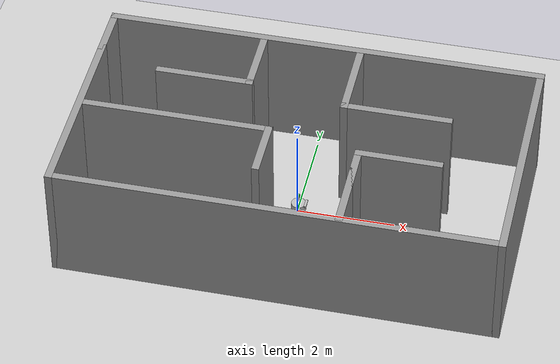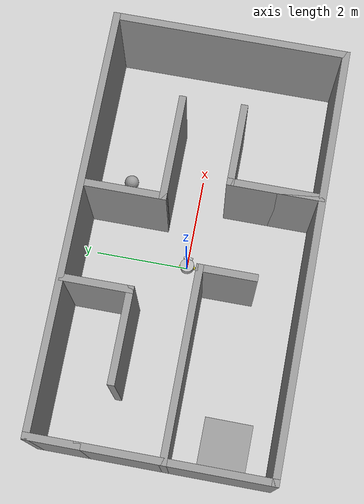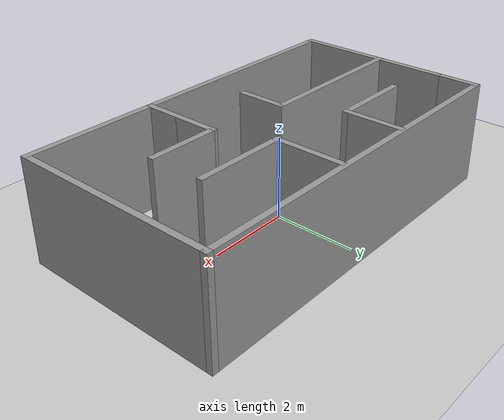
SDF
<sdf version="1.7">
 <world name="default">
  <light name="sun" type="directional">
   <diffuse>0.8 0.8 0.8 1</diffuse>
   <specular>0.2 0.2 0.2 1</specular>
   <attenuation>
    <range>1000</range>
    <constant>0.9</constant>
    <linear>0.01</linear>
    <quadratic>0.001</quadratic>
   </attenuation>
   <direction>-0.5 0.1 -0.9</direction>
   <spot><inner_angle>0</inner_angle><outer_angle>0</outer_angle><falloff>0</falloff></spot>
  </light>
  <model name="ground_plane">
   <static>1</static>
   <link name="link">
    <collision name="collision">
     <geometry><plane><normal>0 0 1</normal><size>100 100</size></plane></geometry>
     <surface>
      <contact><collide_bitmask>65535</collide_bitmask></contact>
      <friction><ode><mu>100</mu><mu2>50</mu2></ode></friction>
     </surface>
    </collision>
    <visual name="visual">
     <cast_shadows>0</cast_shadows>
     <geometry><plane><normal>0 0 1</normal><size>100 100</size></plane></geometry>
     <material>
      <script><uri>file://media/materials/scripts/gazebo.material</uri><name>Gazebo/Grey</name></script>
     </material>
    </visual>
   </link>
  </model>
  <gravity>0 0 -9.8</gravity>
  <magnetic_field>6e-06 2.3e-05 -4.2e-05</magnetic_field>
  <atmosphere type="adiabatic"/>
  <physics type="ode">
   <max_step_size>0.001</max_step_size>
   <real_time_factor>1</real_time_factor>
   <real_time_update_rate>1000</real_time_update_rate>
  </physics>
  <scene><ambient>0.4 0.4 0.4 1</ambient><background>0.7 0.7 0.7 1</background><shadows>1</shadows></scene>
  <audio><device>default</device></audio>
  <spherical_coordinates>
   <surface_model>EARTH_WGS84</surface_model>
   <latitude_deg>0</latitude_deg>
   <longitude_deg>0</longitude_deg>
   <elevation>0</elevation>
   <heading_deg>0</heading_deg>
  </spherical_coordinates>
  <model name="Untitled">
   <pose>0.075336 1.07544 0 0 -0 0</pose>
   <link name="Wall_0">
    <collision name="Wall_0_Collision">
     <geometry><box><size>4 0.15 2.5</size></box></geometry>
     <pose>0 0 1.25 0 -0 0</pose>
    </collision>
    <visual name="Wall_0_Visual">
     <pose>0 0 1.25 0 -0 0</pose>
     <geometry><box><size>4 0.15 2.5</size></box></geometry>
     <material>
      <script><uri>file://media/materials/scripts/gazebo.material</uri><name>Gazebo/Grey</name></script>
      <ambient>1 1 1 1</ambient>
     </material>
     <meta><layer>0</layer></meta>
    </visual>
    <pose>-4.425 -1.6825 0 0 -0 -1.5708</pose>
   </link>
   <link name="Wall_1">
    <collision name="Wall_1_Collision">
     <geometry><box><size>9 0.15 2.5</size></box></geometry>
     <pose>0 0 1.25 0 -0 0</pose>
    </collision>
    <visual name="Wall_1_Visual">
     <pose>0 0 1.25 0 -0 0</pose>
     <geometry><box><size>9 0.15 2.5</size></box></geometry>
     <material>
      <script><uri>file://media/materials/scripts/gazebo.material</uri><name>Gazebo/Grey</name></script>
      <ambient>1 1 1 1</ambient>
     </material>
     <meta><layer>0</layer></meta>
    </visual>
    <pose>-0 -3.6075 0 0 -0 0</pose>
   </link>
   <link name="Wall_10">
    <collision name="Wall_10_Collision">
     <geometry><box><size>1.25 0.15 2.5</size></box></geometry>
     <pose>0 0 1.25 0 -0 0</pose>
    </collision>
    <visual name="Wall_10_Visual">
     <pose>0 0 1.25 0 -0 0</pose>
     <geometry><box><size>1.25 0.15 2.5</size></box></geometry>
     <material>
      <script><uri>file://media/materials/scripts/gazebo.material</uri><name>Gazebo/Grey</name></script>
      <ambient>1 1 1 1</ambient>
     </material>
     <meta><layer>0</layer></meta>
    </visual>
    <pose>-0.575 -1.9875 0 0 -0 -1.5708</pose>
   </link>
   <link name="Wall_12">
    <collision name="Wall_12_Collision">
     <geometry><box><size>1.75 0.15 2.5</size></box></geometry>
     <pose>0 0 1.25 0 -0 0</pose>
    </collision>
    <visual name="Wall_12_Visual">
     <pose>0 0 1.25 0 -0 0</pose>
     <geometry><box><size>1.75 0.15 2.5</size></box></geometry>
     <material>
      <script><uri>file://media/materials/scripts/gazebo.material</uri><name>Gazebo/Grey</name></script>
      <ambient>1 1 1 1</ambient>
     </material>
     <meta><layer>0</layer></meta>
    </visual>
    <pose>0.745 0.3525 0 0 -0 -1.5708</pose>
   </link>
   <link name="Wall_13">
    <collision name="Wall_13_Collision">
     <geometry><box><size>2.25 0.15 2.5</size></box></geometry>
     <pose>0 0 1.25 0 -0 0</pose>
    </collision>
    <visual name="Wall_13_Visual">
     <pose>0 0 1.25 0 -0 0</pose>
     <geometry><box><size>2.25 0.15 2.5</size></box></geometry>
     <material>
      <script><uri>file://media/materials/scripts/gazebo.material</uri><name>Gazebo/Grey</name></script>
      <ambient>1 1 1 1</ambient>
     </material>
     <meta><layer>0</layer></meta>
    </visual>
    <pose>1.795 -0.4475 0 0 -0 0</pose>
   </link>
   <link name="Wall_15">
    <collision name="Wall_15_Collision">
     <geometry><box><size>2 0.15 2.5</size></box></geometry>
     <pose>0 0 1.25 0 -0 0</pose>
    </collision>
    <visual name="Wall_15_Visual">
     <pose>0 0 1.25 0 -0 0</pose>
     <geometry><box><size>2 0.15 2.5</size></box></geometry>
     <material>
      <script><uri>file://media/materials/scripts/gazebo.material</uri><name>Gazebo/Grey</name></script>
      <ambient>1 1 1 1</ambient>
     </material>
     <meta><layer>0</layer></meta>
    </visual>
    <pose>1.285 -2.6525 0 0 -0 -1.5708</pose>
   </link>
   <link name="Wall_16">
    <collision name="Wall_16_Collision">
     <geometry><box><size>2 0.15 2.5</size></box></geometry>
     <pose>0 0 1.25 0 -0 0</pose>
    </collision>
    <visual name="Wall_16_Visual">
     <pose>0 0 1.25 0 -0 0</pose>
     <geometry><box><size>2 0.15 2.5</size></box></geometry>
     <material>
      <script><uri>file://media/materials/scripts/gazebo.material</uri><name>Gazebo/Grey</name></script>
      <ambient>1 1 1 1</ambient>
     </material>
     <meta><layer>0</layer></meta>
    </visual>
    <pose>1.285 -2.6525 0 0 -0 1.5708</pose>
   </link>
   <link name="Wall_17">
    <collision name="Wall_17_Collision">
     <geometry><box><size>1.75 0.15 2.5</size></box></geometry>
     <pose>0 0 1.25 0 -0 0</pose>
    </collision>
    <visual name="Wall_17_Visual">
     <pose>0 0 1.25 0 -0 0</pose>
     <geometry><box><size>1.75 0.15 2.5</size></box></geometry>
     <material>
      <script><uri>file://media/materials/scripts/gazebo.material</uri><name>Gazebo/Grey</name></script>
      <ambient>1 1 1 1</ambient>
     </material>
     <meta><layer>0</layer></meta>
    </visual>
    <pose>2.085 -1.7275 0 0 -0 0</pose>
   </link>
   <link name="Wall_2">
    <collision name="Wall_2_Collision">
     <geometry><box><size>5 0.15 2.5</size></box></geometry>
     <pose>0 0 1.25 0 -0 0</pose>
    </collision>
    <visual name="Wall_2_Visual">
     <pose>0 0 1.25 0 -0 0</pose>
     <geometry><box><size>5 0.15 2.5</size></box></geometry>
     <material>
      <script><uri>file://media/materials/scripts/gazebo.material</uri><name>Gazebo/Grey</name></script>
      <ambient>1 1 1 1</ambient>
     </material>
     <meta><layer>0</layer></meta>
    </visual>
    <pose>4.425 -1.1825 0 0 -0 1.5708</pose>
   </link>
   <link name="Wall_3">
    <collision name="Wall_3_Collision">
     <geometry><box><size>9 0.15 2.5</size></box></geometry>
     <pose>0 0 1.25 0 -0 0</pose>
    </collision>
    <visual name="Wall_3_Visual">
     <pose>0 0 1.25 0 -0 0</pose>
     <geometry><box><size>9 0.15 2.5</size></box></geometry>
     <material>
      <script><uri>file://media/materials/scripts/gazebo.material</uri><name>Gazebo/Grey</name></script>
      <ambient>1 1 1 1</ambient>
     </material>
     <meta><layer>0</layer></meta>
    </visual>
    <pose>-0 1.2425 0 0 -0 3.14159</pose>
   </link>
   <link name="Wall_4">
    <collision name="Wall_4_Collision">
     <geometry><box><size>1.15 0.15 2.5</size></box></geometry>
     <pose>0 0 1.25 0 -0 0</pose>
    </collision>
    <visual name="Wall_4_Visual">
     <pose>0 0 1.25 0 -0 0</pose>
     <geometry><box><size>1.15 0.15 2.5</size></box></geometry>
     <material>
      <script><uri>file://media/materials/scripts/gazebo.material</uri><name>Gazebo/Grey</name></script>
      <ambient>1 1 1 1</ambient>
     </material>
     <meta><layer>0</layer></meta>
    </visual>
    <pose>-4.425 0.7425 0 0 -0 -1.5708</pose>
   </link>
   <link name="Wall_6">
    <collision name="Wall_6_Collision">
     <geometry><box><size>1.5 0.15 2.5</size></box></geometry>
     <pose>0 0 1.25 0 -0 0</pose>
    </collision>
    <visual name="Wall_6_Visual">
     <pose>0 0 1.25 0 -0 0</pose>
     <geometry><box><size>1.5 0.15 2.5</size></box></geometry>
     <material>
      <script><uri>file://media/materials/scripts/gazebo.material</uri><name>Gazebo/Grey</name></script>
      <ambient>1 1 1 1</ambient>
     </material>
     <meta><layer>0</layer></meta>
    </visual>
    <pose>-1.255 0.5075 0 0 -0 -1.5708</pose>
   </link>
   <link name="Wall_7">
    <collision name="Wall_7_Collision">
     <geometry><box><size>2 0.15 2.5</size></box></geometry>
     <pose>0 0 1.25 0 -0 0</pose>
    </collision>
    <visual name="Wall_7_Visual">
     <pose>0 0 1.25 0 -0 0</pose>
     <geometry><box><size>2 0.15 2.5</size></box></geometry>
     <material>
      <script><uri>file://media/materials/scripts/gazebo.material</uri><name>Gazebo/Grey</name></script>
      <ambient>1 1 1 1</ambient>
     </material>
     <meta><layer>0</layer></meta>
    </visual>
    <pose>-2.18 -0.1675 0 0 -0 3.14159</pose>
   </link>
   <link name="Wall_9">
    <collision name="Wall_9_Collision">
     <geometry><box><size>4 0.15 2.5</size></box></geometry>
     <pose>0 0 1.25 0 -0 0</pose>
    </collision>
    <visual name="Wall_9_Visual">
     <pose>0 0 1.25 0 -0 0</pose>
     <geometry><box><size>4 0.15 2.5</size></box></geometry>
     <material>
      <script><uri>file://media/materials/scripts/gazebo.material</uri><name>Gazebo/Grey</name></script>
      <ambient>1 1 1 1</ambient>
     </material>
     <meta><layer>0</layer></meta>
    </visual>
    <pose>-2.5 -1.4375 0 0 -0 0</pose>
   </link>
   <static>1</static>
  </model>
  <model name="unit_box_0">
   <pose>-3.71539 -1.48284 0.499995 -1e-05 0 -0.006089</pose>
   <link name="link">
    <inertial>
     <mass>1</mass>
     <inertia>
      <ixx>0.166667</ixx>
      <ixy>0</ixy>
      <ixz>0</ixz>
      <iyy>0.166667</iyy>
      <iyz>0</iyz>
      <izz>0.166667</izz>
     </inertia>
    </inertial>
    <collision name="collision"><geometry><box><size>1 1 1</size></box></geometry></collision>
    <visual name="visual">
     <geometry><box><size>1 1 1</size></box></geometry>
     <material>
      <script><name>Gazebo/Grey</name><uri>file://media/materials/scripts/gazebo.material</uri></script>
     </material>
    </visual>
   </link>
  </model>
  <model name="unit_sphere">
   <pose>1.6774 1.55802 0.158056 0.039242 -0.234801 0.21189</pose>
   <link name="link">
    <inertial>
     <mass>1</mass>
     <inertia><ixx>0.1</ixx><ixy>0</ixy><ixz>0</ixz><iyy>0.1</iyy><iyz>0</iyz><izz>0.1</izz></inertia>
    </inertial>
    <collision name="collision"><geometry><sphere><radius>0.158056</radius></sphere></geometry></collision>
    <visual name="visual">
     <geometry><sphere><radius>0.158056</radius></sphere></geometry>
     <material>
      <script><name>Gazebo/Grey</name><uri>file://media/materials/scripts/gazebo.material</uri></script>
     </material>
    </visual>
   </link>
  </model>
  <model name="bzz002">
   <link name="base_footprint">
    <inertial>
     <pose>0.002538 0 0.151389 0 -0 0</pose>
     <mass>5.91</mass>
     <inertia>
      <ixx>0.0817521</ixx>
      <ixy>0</ixy>
      <ixz>-0.00119416</ixz>
      <iyy>0.085122</iyy>
      <iyz>0</iyz>
      <izz>0.0602222</izz>
     </inertia>
    </inertial>
    <collision name="base_footprint_fixed_joint_lump__base_link_collision">
     <pose>0 0 0.131 0 -0 0</pose>
     <geometry><cylinder><length>0.2</length><radius>0.15</radius></cylinder></geometry>
    </collision>
    <collision name="base_footprint_fixed_joint_lump__back_caster_collision_1">
     <pose>-0.08 0 0.031 0 -0 0</pose>
     <geometry><sphere><radius>0.032</radius></sphere></geometry>
     <surface>
      <contact><ode><kp>1e+06</kp><kd>1</kd><min_depth>0.001</min_depth></ode></contact>
      <friction><ode><mu>0.05</mu><mu2>0.05</mu2></ode></friction>
     </surface>
    </collision>
    <collision name="base_footprint_fixed_joint_lump__camera_link_collision_2">
     <pose>0.15 0 0.231 0 -0 0</pose>
     <geometry><box><size>0.05 0.2 0.04</size></box></geometry>
    </collision>
    <collision name="base_footprint_fixed_joint_lump__front_caster_collision_3">
     <pose>0.08 0 0.031 0 -0 0</pose>
     <geometry><sphere><radius>0.032</radius></sphere></geometry>
     <surface>
      <contact><ode><kp>1e+06</kp><kd>1</kd><min_depth>0.001</min_depth></ode></contact>
      <friction><ode><mu>0.05</mu><mu2>0.05</mu2></ode></friction>
     </surface>
    </collision>
    <collision name="base_footprint_fixed_joint_lump__imu_link_collision_4">
     <pose>0 0 0.181 0 -0 0</pose>
     <geometry><box><size>0.02 0.02 0.02</size></box></geometry>
    </collision>
    <collision name="base_footprint_fixed_joint_lump__support_link_collision_5">
     <pose>0 0 0.331 0 -0 0</pose>
     <geometry><cylinder><length>0.2</length><radius>0.02</radius></cylinder></geometry>
    </collision>
    <collision name="base_footprint_fixed_joint_lump__laser_link_collision_6">
     <pose>0 0 0.431 0 -0 0</pose>
     <geometry><cylinder><length>0.05</length><radius>0.03</radius></cylinder></geometry>
    </collision>
    <visual name="base_footprint_visual"><geometry><sphere><radius>0.01</radius></sphere></geometry></visual>
    <visual name="base_footprint_fixed_joint_lump__base_link_visual_1">
     <pose>0 0 0.131 0 -0 0</pose>
     <geometry><cylinder><length>0.2</length><radius>0.15</radius></cylinder></geometry>
    </visual>
    <visual name="base_footprint_fixed_joint_lump__back_caster_visual_2">
     <pose>-0.08 0 0.031 0 -0 0</pose>
     <geometry><sphere><radius>0.032</radius></sphere></geometry>
     <material>
      <script><name>Gazebo/Grey</name><uri>file://media/materials/scripts/gazebo.material</uri></script>
     </material>
    </visual>
    <visual name="base_footprint_fixed_joint_lump__camera_link_visual_3">
     <pose>0.15 0 0.231 0 -0 0</pose>
     <geometry><box><size>0.05 0.2 0.04</size></box></geometry>
    </visual>
    <visual name="base_footprint_fixed_joint_lump__front_caster_visual_4">
     <pose>0.08 0 0.031 0 -0 0</pose>
     <geometry><sphere><radius>0.032</radius></sphere></geometry>
     <material>
      <script><name>Gazebo/Grey</name><uri>file://media/materials/scripts/gazebo.material</uri></script>
     </material>
    </visual>
    <visual name="base_footprint_fixed_joint_lump__imu_link_visual_5">
     <pose>0 0 0.181 0 -0 0</pose>
     <geometry><box><size>0.02 0.02 0.02</size></box></geometry>
    </visual>
    <visual name="base_footprint_fixed_joint_lump__support_link_visual_6">
     <pose>0 0 0.331 0 -0 0</pose>
     <geometry><cylinder><length>0.2</length><radius>0.02</radius></cylinder></geometry>
     <material>
      <script><name>Gazebo/DarkGrey</name><uri>file://media/materials/scripts/gazebo.material</uri></script>
     </material>
    </visual>
    <visual name="base_footprint_fixed_joint_lump__laser_link_visual_7">
     <pose>0 0 0.431 0 -0 0</pose>
     <geometry><cylinder><length>0.05</length><radius>0.03</radius></cylinder></geometry>
     <material>
      <script><name>Gazebo/Green</name><uri>file://media/materials/scripts/gazebo.material</uri></script>
     </material>
    </visual>
    <sensor name="imu_sensor" type="imu">
     <visualize>0</visualize>
     <update_rate>100</update_rate>
     <imu>
      <angular_velocity>
       <x><noise type="gaussian"><mean>0</mean><stddev>0.001</stddev></noise></x>
       <y><noise type="gaussian"><mean>0</mean><stddev>0.001</stddev></noise></y>
       <z><noise type="gaussian"><mean>0</mean><stddev>0.001</stddev></noise></z>
      </angular_velocity>
      <linear_acceleration>
       <x><noise type="gaussian"><mean>0</mean><stddev>0.001</stddev></noise></x>
       <y><noise type="gaussian"><mean>0</mean><stddev>0.001</stddev></noise></y>
       <z><noise type="gaussian"><mean>0</mean><stddev>0.001</stddev></noise></z>
      </linear_acceleration>
     </imu>
     <plugin name="imu_gazebo_ros" filename="libgazebo_ros_imu_sensor.so">
      <output_topic>/imu</output_topic>
      <frame_name>imu_link</frame_name>
     </plugin>
     <pose>0 0 0.181 0 -0 0</pose>
    </sensor>
    <sensor name="laser_sensor" type="ray">
     <visualize>1</visualize>
     <update_rate>10</update_rate>
     <ray>
      <scan>
       <horizontal>
        <samples>360</samples>
        <resolution>1</resolution>
        <min_angle>0</min_angle>
        <max_angle>6.28319</max_angle>
       </horizontal>
       <vertical><samples>1</samples><min_angle>0</min_angle><max_angle>0</max_angle></vertical>
      </scan>
      <range><min>0.15</min><max>10</max><resolution>0.01</resolution></range>
     </ray>
     <plugin name="laser_gazebo_ros" filename="libgazebo_ros_ray_sensor.so">
      <output_topic>/scan</output_topic>
      <frame_name>laser_link</frame_name>
      <use_3d>0</use_3d>
     </plugin>
     <pose>0 0 0.431 0 -0 0</pose>
    </sensor>
   </link>
   <joint name="left_wheel_joint" type="revolute">
    <pose relative_to="base_footprint">0 0.15 0.031 0 -0 0</pose>
    <parent>base_footprint</parent>
    <child>left_wheel</child>
    <axis>
     <xyz>0 1 0</xyz>
     <limit><lower>-1e+16</lower><upper>1e+16</upper></limit>
     <dynamics><spring_reference>0</spring_reference><spring_stiffness>0</spring_stiffness></dynamics>
    </axis>
   </joint>
   <link name="left_wheel">
    <pose relative_to="left_wheel_joint">0 0 0 0 -0 0</pose>
    <inertial>
     <mass>0.2</mass>
     <inertia>
      <ixx>8.78e-05</ixx>
      <ixy>0</ixy>
      <ixz>0</ixz>
      <iyy>8.78e-05</iyy>
      <iyz>0</iyz>
      <izz>0.000205</izz>
     </inertia>
    </inertial>
    <collision name="left_wheel_collision">
     <pose>0 0 0 1.57079 -0 0</pose>
     <geometry><cylinder><length>0.05</length><radius>0.032</radius></cylinder></geometry>
     <surface>
      <contact><ode><kp>1e+06</kp><kd>1</kd><min_depth>0.001</min_depth></ode></contact>
      <friction><ode><mu>20</mu><mu2>20</mu2></ode></friction>
     </surface>
    </collision>
    <visual name="left_wheel_visual">
     <pose>0 0 0 1.57079 -0 0</pose>
     <geometry><cylinder><length>0.05</length><radius>0.032</radius></cylinder></geometry>
     <material>
      <script><name>Gazebo/Yellow</name><uri>file://media/materials/scripts/gazebo.material</uri></script>
     </material>
    </visual>
   </link>
   <joint name="right_wheel_joint" type="revolute">
    <pose relative_to="base_footprint">0 -0.15 0.031 0 -0 0</pose>
    <parent>base_footprint</parent>
    <child>right_wheel</child>
    <axis>
     <xyz>0 1 0</xyz>
     <limit><lower>-1e+16</lower><upper>1e+16</upper></limit>
     <dynamics><spring_reference>0</spring_reference><spring_stiffness>0</spring_stiffness></dynamics>
    </axis>
   </joint>
   <link name="right_wheel">
    <pose relative_to="right_wheel_joint">0 0 0 0 -0 0</pose>
    <inertial>
     <mass>0.2</mass>
     <inertia>
      <ixx>8.78e-05</ixx>
      <ixy>0</ixy>
      <ixz>0</ixz>
      <iyy>8.78e-05</iyy>
      <iyz>0</iyz>
      <izz>0.000205</izz>
     </inertia>
    </inertial>
    <collision name="right_wheel_collision">
     <pose>0 0 0 1.57079 -0 0</pose>
     <geometry><cylinder><length>0.05</length><radius>0.032</radius></cylinder></geometry>
     <surface>
      <contact><ode><kp>1e+06</kp><kd>1</kd><min_depth>0.001</min_depth></ode></contact>
      <friction><ode><mu>20</mu><mu2>20</mu2></ode></friction>
     </surface>
    </collision>
    <visual name="right_wheel_visual">
     <pose>0 0 0 1.57079 -0 0</pose>
     <geometry><cylinder><length>0.05</length><radius>0.032</radius></cylinder></geometry>
     <material>
      <script><name>Gazebo/Yellow</name><uri>file://media/materials/scripts/gazebo.material</uri></script>
     </material>
    </visual>
   </link>
   <plugin name="diff_drive" filename="libgazebo_ros_diff_drive.so">
    <left_joint>left_wheel_joint</left_joint>
    <right_joint>right_wheel_joint</right_joint>
    <wheel_separation>0.3</wheel_separation>
    <wheel_diameter>0.064</wheel_diameter>
    <max_wheel_torque>10.0</max_wheel_torque>
    <max_wheel_acceleration>5.0</max_wheel_acceleration>
    <command_topic>cmd_vel</command_topic>
    <publish_odom>1</publish_odom>
    <odometry_topic>odom</odometry_topic>
    <odometry_frame>odom</odometry_frame>
    <robot_base_frame>base_footprint</robot_base_frame>
    <pose_covariance_diagonal>[0.001, 0.001, 1e-3, 1e-3, 1e-3, 0.01]</pose_covariance_diagonal>
    <twist_covariance_diagonal>[0.001, 0.001, 1e-3, 1e-3, 1e-3, 0.01]</twist_covariance_diagonal>
    <publish_odom_tf>1</publish_odom_tf>
    <update_rate>50</update_rate>
    <open_loop>0</open_loop>
    <publish_wheel_joint_state>1</publish_wheel_joint_state>
    <publish_wheel_joint_controller_state>1</publish_wheel_joint_controller_state>
   </plugin>
   <static>0</static>
   <plugin name="joint_state_publisher" filename="libgazebo_ros_joint_state_publisher.so">
    <joint_name>left_wheel_joint</joint_name>
    <joint_name>right_wheel_joint</joint_name>
    <joint_name>front_caster_joint</joint_name>
    <joint_name>back_caster_joint</joint_name>
    <publish_rate>50</publish_rate>
   </plugin>
   <pose>0.027326 -1e-06 0.000947 0.000292 0.000163 -8.7e-05</pose>
  </model>
 </world>
</sdf>
